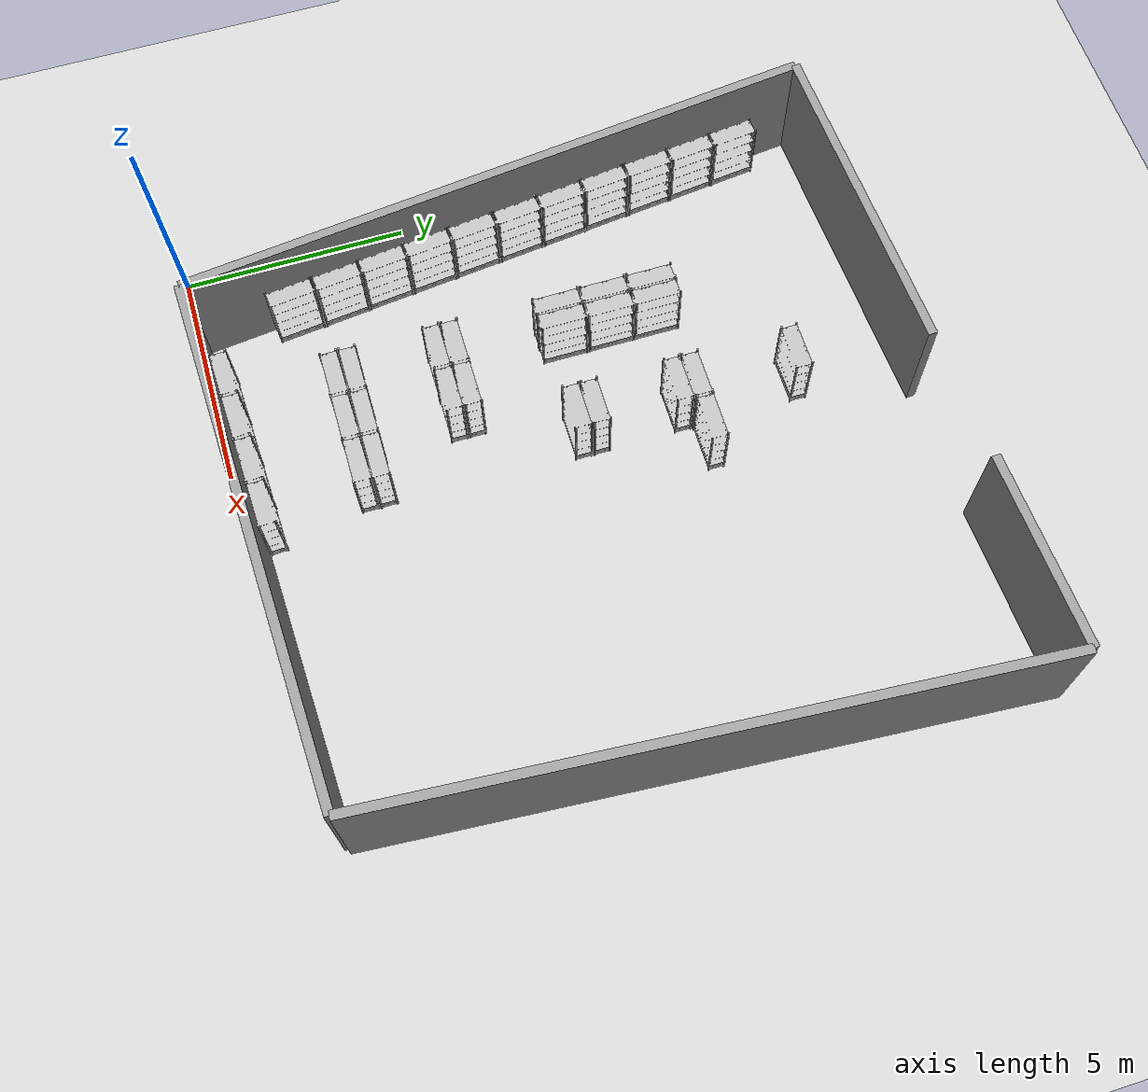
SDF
<sdf version="1.6">
 <world name="default">
  <model name="ground_plane">
   <static>1</static>
   <link name="link">
    <collision name="collision">
     <geometry><plane><normal>0 0 1</normal><size>100 100</size></plane></geometry>
     <surface>
      <contact><collide_bitmask>65535</collide_bitmask></contact>
      <friction><ode><mu>1000</mu><mu2>1000</mu2></ode></friction>
     </surface>
    </collision>
    <visual name="visual">
     <cast_shadows>0</cast_shadows>
     <geometry><plane><normal>0 0 1</normal><size>100 100</size></plane></geometry>
     <material>
      <script><uri>file://media/materials/scripts/gazebo.material</uri><name>Gazebo/Grey</name></script>
     </material>
    </visual>
   </link>
  </model>
  <model name="store_shelf_moduled_0">
   <link name="link">
    <collision name="collision">
     <geometry><mesh><uri>model://store_shelf_moduled/meshes/store_shelf_moduled.dae</uri></mesh></geometry>
    </collision>
    <visual name="visual">
     <geometry><mesh><uri>model://store_shelf_moduled/meshes/store_shelf_moduled.dae</uri></mesh></geometry>
    </visual>
    <inertial>
     <mass>1000</mass>
     <inertia>
      <ixx>840083</ixx>
      <ixy>0</ixy>
      <ixz>0</ixz>
      <iyy>475500</iyy>
      <iyz>0</iyz>
      <izz>1.30208e+06</izz>
     </inertia>
    </inertial>
   </link>
   <static>1</static>
   <pose>2.795482 0.2398979 0 0 0 0.04519106</pose>
  </model>
  <model name="store_shelf_moduled_1">
   <link name="link">
    <collision name="collision">
     <geometry><mesh><uri>model://store_shelf_moduled/meshes/store_shelf_moduled.dae</uri></mesh></geometry>
    </collision>
    <visual name="visual">
     <geometry><mesh><uri>model://store_shelf_moduled/meshes/store_shelf_moduled.dae</uri></mesh></geometry>
    </visual>
    <inertial>
     <mass>1000</mass>
     <inertia>
      <ixx>840083</ixx>
      <ixy>0</ixy>
      <ixz>0</ixz>
      <iyy>475500</iyy>
      <iyz>0</iyz>
      <izz>1.30208e+06</izz>
     </inertia>
    </inertial>
   </link>
   <static>1</static>
   <pose>3.855483 0.2898979 0 0 0 0.04519106</pose>
  </model>
  <model name="store_shelf_moduled_2">
   <link name="link">
    <collision name="collision">
     <geometry><mesh><uri>model://store_shelf_moduled/meshes/store_shelf_moduled.dae</uri></mesh></geometry>
    </collision>
    <visual name="visual">
     <geometry><mesh><uri>model://store_shelf_moduled/meshes/store_shelf_moduled.dae</uri></mesh></geometry>
    </visual>
    <inertial>
     <mass>1000</mass>
     <inertia>
      <ixx>840083</ixx>
      <ixy>0</ixy>
      <ixz>0</ixz>
      <iyy>475500</iyy>
      <iyz>0</iyz>
      <izz>1.30208e+06</izz>
     </inertia>
    </inertial>
   </link>
   <static>1</static>
   <pose>4.915483 0.3398979 0 0 0 0.04519106</pose>
  </model>
  <model name="store_shelf_moduled_3">
   <link name="link">
    <collision name="collision">
     <geometry><mesh><uri>model://store_shelf_moduled/meshes/store_shelf_moduled.dae</uri></mesh></geometry>
    </collision>
    <visual name="visual">
     <geometry><mesh><uri>model://store_shelf_moduled/meshes/store_shelf_moduled.dae</uri></mesh></geometry>
    </visual>
    <inertial>
     <mass>1000</mass>
     <inertia>
      <ixx>840083</ixx>
      <ixy>0</ixy>
      <ixz>0</ixz>
      <iyy>475500</iyy>
      <iyz>0</iyz>
      <izz>1.30208e+06</izz>
     </inertia>
    </inertial>
   </link>
   <static>1</static>
   <pose>5.975482 0.3898979 0 0 0 0.04519106</pose>
  </model>
  <model name="store_shelf_moduled_20">
   <link name="link">
    <collision name="collision">
     <geometry><mesh><uri>model://store_shelf_moduled/meshes/store_shelf_moduled.dae</uri></mesh></geometry>
    </collision>
    <visual name="visual">
     <geometry><mesh><uri>model://store_shelf_moduled/meshes/store_shelf_moduled.dae</uri></mesh></geometry>
    </visual>
    <inertial>
     <mass>1000</mass>
     <inertia>
      <ixx>840083</ixx>
      <ixy>0</ixy>
      <ixz>0</ixz>
      <iyy>475500</iyy>
      <iyz>0</iyz>
      <izz>1.30208e+06</izz>
     </inertia>
    </inertial>
   </link>
   <static>1</static>
   <pose>0.3193335 13.27153 0 0 0 -1.455279</pose>
  </model>
  <model name="store_shelf_moduled_21">
   <link name="link">
    <collision name="collision">
     <geometry><mesh><uri>model://store_shelf_moduled/meshes/store_shelf_moduled.dae</uri></mesh></geometry>
    </collision>
    <visual name="visual">
     <geometry><mesh><uri>model://store_shelf_moduled/meshes/store_shelf_moduled.dae</uri></mesh></geometry>
    </visual>
    <inertial>
     <mass>1000</mass>
     <inertia>
      <ixx>840083</ixx>
      <ixy>0</ixy>
      <ixz>0</ixz>
      <iyy>475500</iyy>
      <iyz>0</iyz>
      <izz>1.30208e+06</izz>
     </inertia>
    </inertial>
   </link>
   <static>1</static>
   <pose>0.4393335 12.22153 0 0 0 -1.455279</pose>
  </model>
  <model name="store_shelf_moduled_22">
   <link name="link">
    <collision name="collision">
     <geometry><mesh><uri>model://store_shelf_moduled/meshes/store_shelf_moduled.dae</uri></mesh></geometry>
    </collision>
    <visual name="visual">
     <geometry><mesh><uri>model://store_shelf_moduled/meshes/store_shelf_moduled.dae</uri></mesh></geometry>
    </visual>
    <inertial>
     <mass>1000</mass>
     <inertia>
      <ixx>840083</ixx>
      <ixy>0</ixy>
      <ixz>0</ixz>
      <iyy>475500</iyy>
      <iyz>0</iyz>
      <izz>1.30208e+06</izz>
     </inertia>
    </inertial>
   </link>
   <static>1</static>
   <pose>0.5593336 11.17153 0 0 0 -1.455279</pose>
  </model>
  <model name="store_shelf_moduled_23">
   <link name="link">
    <collision name="collision">
     <geometry><mesh><uri>model://store_shelf_moduled/meshes/store_shelf_moduled.dae</uri></mesh></geometry>
    </collision>
    <visual name="visual">
     <geometry><mesh><uri>model://store_shelf_moduled/meshes/store_shelf_moduled.dae</uri></mesh></geometry>
    </visual>
    <inertial>
     <mass>1000</mass>
     <inertia>
      <ixx>840083</ixx>
      <ixy>0</ixy>
      <ixz>0</ixz>
      <iyy>475500</iyy>
      <iyz>0</iyz>
      <izz>1.30208e+06</izz>
     </inertia>
    </inertial>
   </link>
   <static>1</static>
   <pose>0.6793335 10.11153 0 0 0 -1.455279</pose>
  </model>
  <model name="store_shelf_moduled_24">
   <link name="link">
    <collision name="collision">
     <geometry><mesh><uri>model://store_shelf_moduled/meshes/store_shelf_moduled.dae</uri></mesh></geometry>
    </collision>
    <visual name="visual">
     <geometry><mesh><uri>model://store_shelf_moduled/meshes/store_shelf_moduled.dae</uri></mesh></geometry>
    </visual>
    <inertial>
     <mass>1000</mass>
     <inertia>
      <ixx>840083</ixx>
      <ixy>0</ixy>
      <ixz>0</ixz>
      <iyy>475500</iyy>
      <iyz>0</iyz>
      <izz>1.30208e+06</izz>
     </inertia>
    </inertial>
   </link>
   <static>1</static>
   <pose>0.8093335 9.061526 0 0 0 -1.455279</pose>
  </model>
  <model name="store_shelf_moduled_25">
   <link name="link">
    <collision name="collision">
     <geometry><mesh><uri>model://store_shelf_moduled/meshes/store_shelf_moduled.dae</uri></mesh></geometry>
    </collision>
    <visual name="visual">
     <geometry><mesh><uri>model://store_shelf_moduled/meshes/store_shelf_moduled.dae</uri></mesh></geometry>
    </visual>
    <inertial>
     <mass>1000</mass>
     <inertia>
      <ixx>840083</ixx>
      <ixy>0</ixy>
      <ixz>0</ixz>
      <iyy>475500</iyy>
      <iyz>0</iyz>
      <izz>1.30208e+06</izz>
     </inertia>
    </inertial>
   </link>
   <static>1</static>
   <pose>0.9293335 8.011526 0 0 0 -1.455279</pose>
  </model>
  <model name="store_shelf_moduled_26">
   <link name="link">
    <collision name="collision">
     <geometry><mesh><uri>model://store_shelf_moduled/meshes/store_shelf_moduled.dae</uri></mesh></geometry>
    </collision>
    <visual name="visual">
     <geometry><mesh><uri>model://store_shelf_moduled/meshes/store_shelf_moduled.dae</uri></mesh></geometry>
    </visual>
    <inertial>
     <mass>1000</mass>
     <inertia>
      <ixx>840083</ixx>
      <ixy>0</ixy>
      <ixz>0</ixz>
      <iyy>475500</iyy>
      <iyz>0</iyz>
      <izz>1.30208e+06</izz>
     </inertia>
    </inertial>
   </link>
   <static>1</static>
   <pose>1.049333 6.951526 0 0 0 -1.455279</pose>
  </model>
  <model name="store_shelf_moduled_27">
   <link name="link">
    <collision name="collision">
     <geometry><mesh><uri>model://store_shelf_moduled/meshes/store_shelf_moduled.dae</uri></mesh></geometry>
    </collision>
    <visual name="visual">
     <geometry><mesh><uri>model://store_shelf_moduled/meshes/store_shelf_moduled.dae</uri></mesh></geometry>
    </visual>
    <inertial>
     <mass>1000</mass>
     <inertia>
      <ixx>840083</ixx>
      <ixy>0</ixy>
      <ixz>0</ixz>
      <iyy>475500</iyy>
      <iyz>0</iyz>
      <izz>1.30208e+06</izz>
     </inertia>
    </inertial>
   </link>
   <static>1</static>
   <pose>1.169333 5.901526 0 0 0 -1.455279</pose>
  </model>
  <model name="store_shelf_moduled_28">
   <link name="link">
    <collision name="collision">
     <geometry><mesh><uri>model://store_shelf_moduled/meshes/store_shelf_moduled.dae</uri></mesh></geometry>
    </collision>
    <visual name="visual">
     <geometry><mesh><uri>model://store_shelf_moduled/meshes/store_shelf_moduled.dae</uri></mesh></geometry>
    </visual>
    <inertial>
     <mass>1000</mass>
     <inertia>
      <ixx>840083</ixx>
      <ixy>0</ixy>
      <ixz>0</ixz>
      <iyy>475500</iyy>
      <iyz>0</iyz>
      <izz>1.30208e+06</izz>
     </inertia>
    </inertial>
   </link>
   <static>1</static>
   <pose>1.289333 4.851526 0 0 0 -1.455279</pose>
  </model>
  <model name="store_shelf_moduled_29">
   <link name="link">
    <collision name="collision">
     <geometry><mesh><uri>model://store_shelf_moduled/meshes/store_shelf_moduled.dae</uri></mesh></geometry>
    </collision>
    <visual name="visual">
     <geometry><mesh><uri>model://store_shelf_moduled/meshes/store_shelf_moduled.dae</uri></mesh></geometry>
    </visual>
    <inertial>
     <mass>1000</mass>
     <inertia>
      <ixx>840083</ixx>
      <ixy>0</ixy>
      <ixz>0</ixz>
      <iyy>475500</iyy>
      <iyz>0</iyz>
      <izz>1.30208e+06</izz>
     </inertia>
    </inertial>
   </link>
   <static>1</static>
   <pose>1.419333 3.801526 0 0 0 -1.455279</pose>
  </model>
  <model name="store_shelf_moduled_30">
   <link name="link">
    <collision name="collision">
     <geometry><mesh><uri>model://store_shelf_moduled/meshes/store_shelf_moduled.dae</uri></mesh></geometry>
    </collision>
    <visual name="visual">
     <geometry><mesh><uri>model://store_shelf_moduled/meshes/store_shelf_moduled.dae</uri></mesh></geometry>
    </visual>
    <inertial>
     <mass>1000</mass>
     <inertia>
      <ixx>840083</ixx>
      <ixy>0</ixy>
      <ixz>0</ixz>
      <iyy>475500</iyy>
      <iyz>0</iyz>
      <izz>1.30208e+06</izz>
     </inertia>
    </inertial>
   </link>
   <static>1</static>
   <pose>1.539333 2.741526 0 0 0 -1.455279</pose>
  </model>
  <model name="store_shelf_moduled_31">
   <link name="link">
    <collision name="collision">
     <geometry><mesh><uri>model://store_shelf_moduled/meshes/store_shelf_moduled.dae</uri></mesh></geometry>
    </collision>
    <visual name="visual">
     <geometry><mesh><uri>model://store_shelf_moduled/meshes/store_shelf_moduled.dae</uri></mesh></geometry>
    </visual>
    <inertial>
     <mass>1000</mass>
     <inertia>
      <ixx>840083</ixx>
      <ixy>0</ixy>
      <ixz>0</ixz>
      <iyy>475500</iyy>
      <iyz>0</iyz>
      <izz>1.30208e+06</izz>
     </inertia>
    </inertial>
   </link>
   <static>1</static>
   <pose>5.7 9.84 0 0 0 0</pose>
  </model>
  <model name="store_shelf_moduled_32">
   <link name="link">
    <collision name="collision">
     <geometry><mesh><uri>model://store_shelf_moduled/meshes/store_shelf_moduled.dae</uri></mesh></geometry>
    </collision>
    <visual name="visual">
     <geometry><mesh><uri>model://store_shelf_moduled/meshes/store_shelf_moduled.dae</uri></mesh></geometry>
    </visual>
    <inertial>
     <mass>1000</mass>
     <inertia>
      <ixx>840083</ixx>
      <ixy>0</ixy>
      <ixz>0</ixz>
      <iyy>475500</iyy>
      <iyz>0</iyz>
      <izz>1.30208e+06</izz>
     </inertia>
    </inertial>
   </link>
   <static>1</static>
   <pose>6.76 9.84 0 0 0 -3.141593</pose>
  </model>
  <model name="store_shelf_moduled_33">
   <link name="link">
    <collision name="collision">
     <geometry><mesh><uri>model://store_shelf_moduled/meshes/store_shelf_moduled.dae</uri></mesh></geometry>
    </collision>
    <visual name="visual">
     <geometry><mesh><uri>model://store_shelf_moduled/meshes/store_shelf_moduled.dae</uri></mesh></geometry>
    </visual>
    <inertial>
     <mass>1000</mass>
     <inertia>
      <ixx>840083</ixx>
      <ixy>0</ixy>
      <ixz>0</ixz>
      <iyy>475500</iyy>
      <iyz>0</iyz>
      <izz>1.30208e+06</izz>
     </inertia>
    </inertial>
   </link>
   <static>1</static>
   <pose>6.76 9.84 0 0 0 0</pose>
  </model>
  <model name="store_shelf_moduled_39">
   <link name="link">
    <collision name="collision">
     <geometry><mesh><uri>model://store_shelf_moduled/meshes/store_shelf_moduled.dae</uri></mesh></geometry>
    </collision>
    <visual name="visual">
     <geometry><mesh><uri>model://store_shelf_moduled/meshes/store_shelf_moduled.dae</uri></mesh></geometry>
    </visual>
    <inertial>
     <mass>1000</mass>
     <inertia>
      <ixx>840083</ixx>
      <ixy>0</ixy>
      <ixz>0</ixz>
      <iyy>475500</iyy>
      <iyz>0</iyz>
      <izz>1.30208e+06</izz>
     </inertia>
    </inertial>
   </link>
   <static>1</static>
   <pose>5.7 7.6 0 0 0 0</pose>
  </model>
  <model name="store_shelf_moduled_40">
   <link name="link">
    <collision name="collision">
     <geometry><mesh><uri>model://store_shelf_moduled/meshes/store_shelf_moduled.dae</uri></mesh></geometry>
    </collision>
    <visual name="visual">
     <geometry><mesh><uri>model://store_shelf_moduled/meshes/store_shelf_moduled.dae</uri></mesh></geometry>
    </visual>
    <inertial>
     <mass>1000</mass>
     <inertia>
      <ixx>840083</ixx>
      <ixy>0</ixy>
      <ixz>0</ixz>
      <iyy>475500</iyy>
      <iyz>0</iyz>
      <izz>1.30208e+06</izz>
     </inertia>
    </inertial>
   </link>
   <static>1</static>
   <pose>6.76 7.6 0 0 0 -3.141593</pose>
  </model>
  <model name="store_shelf_moduled_45">
   <link name="link">
    <collision name="collision">
     <geometry><mesh><uri>model://store_shelf_moduled/meshes/store_shelf_moduled.dae</uri></mesh></geometry>
    </collision>
    <visual name="visual">
     <geometry><mesh><uri>model://store_shelf_moduled/meshes/store_shelf_moduled.dae</uri></mesh></geometry>
    </visual>
    <inertial>
     <mass>1000</mass>
     <inertia>
      <ixx>840083</ixx>
      <ixy>0</ixy>
      <ixz>0</ixz>
      <iyy>475500</iyy>
      <iyz>0</iyz>
      <izz>1.30208e+06</izz>
     </inertia>
    </inertial>
   </link>
   <static>1</static>
   <pose>3.46 2.9 0 0 0 0</pose>
  </model>
  <model name="store_shelf_moduled_46">
   <link name="link">
    <collision name="collision">
     <geometry><mesh><uri>model://store_shelf_moduled/meshes/store_shelf_moduled.dae</uri></mesh></geometry>
    </collision>
    <visual name="visual">
     <geometry><mesh><uri>model://store_shelf_moduled/meshes/store_shelf_moduled.dae</uri></mesh></geometry>
    </visual>
    <inertial>
     <mass>1000</mass>
     <inertia>
      <ixx>840083</ixx>
      <ixy>0</ixy>
      <ixz>0</ixz>
      <iyy>475500</iyy>
      <iyz>0</iyz>
      <izz>1.30208e+06</izz>
     </inertia>
    </inertial>
   </link>
   <static>1</static>
   <pose>4.52 2.9 0 0 0 -3.141593</pose>
  </model>
  <model name="store_shelf_moduled_47">
   <link name="link">
    <collision name="collision">
     <geometry><mesh><uri>model://store_shelf_moduled/meshes/store_shelf_moduled.dae</uri></mesh></geometry>
    </collision>
    <visual name="visual">
     <geometry><mesh><uri>model://store_shelf_moduled/meshes/store_shelf_moduled.dae</uri></mesh></geometry>
    </visual>
    <inertial>
     <mass>1000</mass>
     <inertia>
      <ixx>840083</ixx>
      <ixy>0</ixy>
      <ixz>0</ixz>
      <iyy>475500</iyy>
      <iyz>0</iyz>
      <izz>1.30208e+06</izz>
     </inertia>
    </inertial>
   </link>
   <static>1</static>
   <pose>4.52 2.9 0 0 0 0</pose>
  </model>
  <model name="store_shelf_moduled_48">
   <link name="link">
    <collision name="collision">
     <geometry><mesh><uri>model://store_shelf_moduled/meshes/store_shelf_moduled.dae</uri></mesh></geometry>
    </collision>
    <visual name="visual">
     <geometry><mesh><uri>model://store_shelf_moduled/meshes/store_shelf_moduled.dae</uri></mesh></geometry>
    </visual>
    <inertial>
     <mass>1000</mass>
     <inertia>
      <ixx>840083</ixx>
      <ixy>0</ixy>
      <ixz>0</ixz>
      <iyy>475500</iyy>
      <iyz>0</iyz>
      <izz>1.30208e+06</izz>
     </inertia>
    </inertial>
   </link>
   <static>1</static>
   <pose>5.58 2.9 0 0 0 -3.141593</pose>
  </model>
  <model name="store_shelf_moduled_49">
   <link name="link">
    <collision name="collision">
     <geometry><mesh><uri>model://store_shelf_moduled/meshes/store_shelf_moduled.dae</uri></mesh></geometry>
    </collision>
    <visual name="visual">
     <geometry><mesh><uri>model://store_shelf_moduled/meshes/store_shelf_moduled.dae</uri></mesh></geometry>
    </visual>
    <inertial>
     <mass>1000</mass>
     <inertia>
      <ixx>840083</ixx>
      <ixy>0</ixy>
      <ixz>0</ixz>
      <iyy>475500</iyy>
      <iyz>0</iyz>
      <izz>1.30208e+06</izz>
     </inertia>
    </inertial>
   </link>
   <static>1</static>
   <pose>5.58 2.9 0 0 0 0</pose>
  </model>
  <model name="store_shelf_moduled_50">
   <link name="link">
    <collision name="collision">
     <geometry><mesh><uri>model://store_shelf_moduled/meshes/store_shelf_moduled.dae</uri></mesh></geometry>
    </collision>
    <visual name="visual">
     <geometry><mesh><uri>model://store_shelf_moduled/meshes/store_shelf_moduled.dae</uri></mesh></geometry>
    </visual>
    <inertial>
     <mass>1000</mass>
     <inertia>
      <ixx>840083</ixx>
      <ixy>0</ixy>
      <ixz>0</ixz>
      <iyy>475500</iyy>
      <iyz>0</iyz>
      <izz>1.30208e+06</izz>
     </inertia>
    </inertial>
   </link>
   <static>1</static>
   <pose>6.64 2.9 0 0 0 -3.141593</pose>
  </model>
  <model name="store_shelf_moduled_55">
   <link name="link">
    <collision name="collision">
     <geometry><mesh><uri>model://store_shelf_moduled/meshes/store_shelf_moduled.dae</uri></mesh></geometry>
    </collision>
    <visual name="visual">
     <geometry><mesh><uri>model://store_shelf_moduled/meshes/store_shelf_moduled.dae</uri></mesh></geometry>
    </visual>
    <inertial>
     <mass>1000</mass>
     <inertia>
      <ixx>840083</ixx>
      <ixy>0</ixy>
      <ixz>0</ixz>
      <iyy>475500</iyy>
      <iyz>0</iyz>
      <izz>1.30208e+06</izz>
     </inertia>
    </inertial>
   </link>
   <static>1</static>
   <pose>3.46 5.14 0 0 0 0</pose>
  </model>
  <model name="store_shelf_moduled_56">
   <link name="link">
    <collision name="collision">
     <geometry><mesh><uri>model://store_shelf_moduled/meshes/store_shelf_moduled.dae</uri></mesh></geometry>
    </collision>
    <visual name="visual">
     <geometry><mesh><uri>model://store_shelf_moduled/meshes/store_shelf_moduled.dae</uri></mesh></geometry>
    </visual>
    <inertial>
     <mass>1000</mass>
     <inertia>
      <ixx>840083</ixx>
      <ixy>0</ixy>
      <ixz>0</ixz>
      <iyy>475500</iyy>
      <iyz>0</iyz>
      <izz>1.30208e+06</izz>
     </inertia>
    </inertial>
   </link>
   <static>1</static>
   <pose>4.52 5.14 0 0 0 -3.141593</pose>
  </model>
  <model name="store_shelf_moduled_57">
   <link name="link">
    <collision name="collision">
     <geometry><mesh><uri>model://store_shelf_moduled/meshes/store_shelf_moduled.dae</uri></mesh></geometry>
    </collision>
    <visual name="visual">
     <geometry><mesh><uri>model://store_shelf_moduled/meshes/store_shelf_moduled.dae</uri></mesh></geometry>
    </visual>
    <inertial>
     <mass>1000</mass>
     <inertia>
      <ixx>840083</ixx>
      <ixy>0</ixy>
      <ixz>0</ixz>
      <iyy>475500</iyy>
      <iyz>0</iyz>
      <izz>1.30208e+06</izz>
     </inertia>
    </inertial>
   </link>
   <static>1</static>
   <pose>4.52 5.14 0 0 0 0</pose>
  </model>
  <model name="store_shelf_moduled_58">
   <link name="link">
    <collision name="collision">
     <geometry><mesh><uri>model://store_shelf_moduled/meshes/store_shelf_moduled.dae</uri></mesh></geometry>
    </collision>
    <visual name="visual">
     <geometry><mesh><uri>model://store_shelf_moduled/meshes/store_shelf_moduled.dae</uri></mesh></geometry>
    </visual>
    <inertial>
     <mass>1000</mass>
     <inertia>
      <ixx>840083</ixx>
      <ixy>0</ixy>
      <ixz>0</ixz>
      <iyy>475500</iyy>
      <iyz>0</iyz>
      <izz>1.30208e+06</izz>
     </inertia>
    </inertial>
   </link>
   <static>1</static>
   <pose>5.58 5.14 0 0 0 -3.141593</pose>
  </model>
  <model name="store_shelf_moduled_65">
   <link name="link">
    <collision name="collision">
     <geometry><mesh><uri>model://store_shelf_moduled/meshes/store_shelf_moduled.dae</uri></mesh></geometry>
    </collision>
    <visual name="visual">
     <geometry><mesh><uri>model://store_shelf_moduled/meshes/store_shelf_moduled.dae</uri></mesh></geometry>
    </visual>
    <inertial>
     <mass>1000</mass>
     <inertia>
      <ixx>840083</ixx>
      <ixy>0</ixy>
      <ixz>0</ixz>
      <iyy>475500</iyy>
      <iyz>0</iyz>
      <izz>1.30208e+06</izz>
     </inertia>
    </inertial>
   </link>
   <static>1</static>
   <pose>5.7 12.08 0 0 0 0</pose>
  </model>
  <model name="store_shelf_moduled_69">
   <link name="link">
    <collision name="collision">
     <geometry><mesh><uri>model://store_shelf_moduled/meshes/store_shelf_moduled.dae</uri></mesh></geometry>
    </collision>
    <visual name="visual">
     <geometry><mesh><uri>model://store_shelf_moduled/meshes/store_shelf_moduled.dae</uri></mesh></geometry>
    </visual>
    <inertial>
     <mass>1000</mass>
     <inertia>
      <ixx>840083</ixx>
      <ixy>0</ixy>
      <ixz>0</ixz>
      <iyy>475500</iyy>
      <iyz>0</iyz>
      <izz>1.30208e+06</izz>
     </inertia>
    </inertial>
   </link>
   <static>1</static>
   <pose>3.88 7.18 0 0 0 1.570796</pose>
  </model>
  <model name="store_shelf_moduled_70">
   <link name="link">
    <collision name="collision">
     <geometry><mesh><uri>model://store_shelf_moduled/meshes/store_shelf_moduled.dae</uri></mesh></geometry>
    </collision>
    <visual name="visual">
     <geometry><mesh><uri>model://store_shelf_moduled/meshes/store_shelf_moduled.dae</uri></mesh></geometry>
    </visual>
    <inertial>
     <mass>1000</mass>
     <inertia>
      <ixx>840083</ixx>
      <ixy>0</ixy>
      <ixz>0</ixz>
      <iyy>475500</iyy>
      <iyz>0</iyz>
      <izz>1.30208e+06</izz>
     </inertia>
    </inertial>
   </link>
   <static>1</static>
   <pose>3.88 8.24 0 0 0 -1.570796</pose>
  </model>
  <model name="store_shelf_moduled_71">
   <link name="link">
    <collision name="collision">
     <geometry><mesh><uri>model://store_shelf_moduled/meshes/store_shelf_moduled.dae</uri></mesh></geometry>
    </collision>
    <visual name="visual">
     <geometry><mesh><uri>model://store_shelf_moduled/meshes/store_shelf_moduled.dae</uri></mesh></geometry>
    </visual>
    <inertial>
     <mass>1000</mass>
     <inertia>
      <ixx>840083</ixx>
      <ixy>0</ixy>
      <ixz>0</ixz>
      <iyy>475500</iyy>
      <iyz>0</iyz>
      <izz>1.30208e+06</izz>
     </inertia>
    </inertial>
   </link>
   <static>1</static>
   <pose>3.88 8.24 0 0 0 1.570796</pose>
  </model>
  <model name="store_shelf_moduled_72">
   <link name="link">
    <collision name="collision">
     <geometry><mesh><uri>model://store_shelf_moduled/meshes/store_shelf_moduled.dae</uri></mesh></geometry>
    </collision>
    <visual name="visual">
     <geometry><mesh><uri>model://store_shelf_moduled/meshes/store_shelf_moduled.dae</uri></mesh></geometry>
    </visual>
    <inertial>
     <mass>1000</mass>
     <inertia>
      <ixx>840083</ixx>
      <ixy>0</ixy>
      <ixz>0</ixz>
      <iyy>475500</iyy>
      <iyz>0</iyz>
      <izz>1.30208e+06</izz>
     </inertia>
    </inertial>
   </link>
   <static>1</static>
   <pose>3.88 9.3 0 0 0 -1.570796</pose>
  </model>
  <model name="store_shelf_moduled_73">
   <link name="link">
    <collision name="collision">
     <geometry><mesh><uri>model://store_shelf_moduled/meshes/store_shelf_moduled.dae</uri></mesh></geometry>
    </collision>
    <visual name="visual">
     <geometry><mesh><uri>model://store_shelf_moduled/meshes/store_shelf_moduled.dae</uri></mesh></geometry>
    </visual>
    <inertial>
     <mass>1000</mass>
     <inertia>
      <ixx>840083</ixx>
      <ixy>0</ixy>
      <ixz>0</ixz>
      <iyy>475500</iyy>
      <iyz>0</iyz>
      <izz>1.30208e+06</izz>
     </inertia>
    </inertial>
   </link>
   <static>1</static>
   <pose>3.88 9.3 0 0 0 1.570796</pose>
  </model>
  <model name="store_shelf_moduled_74">
   <link name="link">
    <collision name="collision">
     <geometry><mesh><uri>model://store_shelf_moduled/meshes/store_shelf_moduled.dae</uri></mesh></geometry>
    </collision>
    <visual name="visual">
     <geometry><mesh><uri>model://store_shelf_moduled/meshes/store_shelf_moduled.dae</uri></mesh></geometry>
    </visual>
    <inertial>
     <mass>1000</mass>
     <inertia>
      <ixx>840083</ixx>
      <ixy>0</ixy>
      <ixz>0</ixz>
      <iyy>475500</iyy>
      <iyz>0</iyz>
      <izz>1.30208e+06</izz>
     </inertia>
    </inertial>
   </link>
   <static>1</static>
   <pose>3.88 10.36 0 0 0 -1.570796</pose>
  </model>
  <model name="grey_wall0">
   <static>1</static>
   <link name="link">
    <pose>7.61 0.365 1.4 0 0 0.04519105</pose>
    <visual name="visual">
     <cast_shadows>0</cast_shadows>
     <geometry><box><size>11.73198 0.2 2.8</size></box></geometry>
     <material>
      <name>vrc/grey_wall</name>
      <script>
       <uri>model://grey_wall/materials/scripts</uri>
       <uri>model://grey_wall/materials/textures</uri>
       <name>vrc/grey_wall</name>
      </script>
     </material>
    </visual>
    <collision name="collision">
     <geometry><box><size>11.73198 0.2 2.8</size></box></geometry>
     <max_contacts>5</max_contacts>
    </collision>
   </link>
  </model>
  <model name="grey_wall1">
   <static>1</static>
   <link name="link">
    <pose>14.02 7.845 1.4 0 0 1.494713</pose>
    <visual name="visual">
     <cast_shadows>0</cast_shadows>
     <geometry><box><size>14.47187 0.2 2.8</size></box></geometry>
     <material>
      <name>vrc/grey_wall</name>
      <script>
       <uri>model://grey_wall/materials/scripts</uri>
       <uri>model://grey_wall/materials/textures</uri>
       <name>vrc/grey_wall</name>
      </script>
     </material>
    </visual>
    <collision name="collision">
     <geometry><box><size>14.47187 0.2 2.8</size></box></geometry>
     <max_contacts>5</max_contacts>
    </collision>
   </link>
  </model>
  <model name="grey_wall2">
   <static>1</static>
   <link name="link">
    <pose>12.445 14.95 1.4 0 0 -3.089874</pose>
    <visual name="visual">
     <cast_shadows>0</cast_shadows>
     <geometry><box><size>4.25569 0.2 2.8</size></box></geometry>
     <material>
      <name>vrc/grey_wall</name>
      <script>
       <uri>model://grey_wall/materials/scripts</uri>
       <uri>model://grey_wall/materials/textures</uri>
       <name>vrc/grey_wall</name>
      </script>
     </material>
    </visual>
    <collision name="collision">
     <geometry><box><size>4.25569 0.2 2.8</size></box></geometry>
     <max_contacts>5</max_contacts>
    </collision>
   </link>
  </model>
  <model name="grey_wall3">
   <static>1</static>
   <link name="link">
    <pose>3.745 14.505 1.4 0 0 -3.090882</pose>
    <visual name="visual">
     <cast_shadows>0</cast_shadows>
     <geometry><box><size>7.299384 0.2 2.8</size></box></geometry>
     <material>
      <name>vrc/grey_wall</name>
      <script>
       <uri>model://grey_wall/materials/scripts</uri>
       <uri>model://grey_wall/materials/textures</uri>
       <name>vrc/grey_wall</name>
      </script>
     </material>
    </visual>
    <collision name="collision">
     <geometry><box><size>7.299384 0.2 2.8</size></box></geometry>
     <max_contacts>5</max_contacts>
    </collision>
   </link>
  </model>
  <model name="grey_wall4">
   <static>1</static>
   <link name="link">
    <pose>0.925 7.21 1.4 0 0 -1.455279</pose>
    <visual name="visual">
     <cast_shadows>0</cast_shadows>
     <geometry><box><size>14.31541 0.2 2.8</size></box></geometry>
     <material>
      <name>vrc/grey_wall</name>
      <script>
       <uri>model://grey_wall/materials/scripts</uri>
       <uri>model://grey_wall/materials/textures</uri>
       <name>vrc/grey_wall</name>
      </script>
     </material>
    </visual>
    <collision name="collision">
     <geometry><box><size>14.31541 0.2 2.8</size></box></geometry>
     <max_contacts>5</max_contacts>
    </collision>
   </link>
  </model>
 </world>
</sdf>
